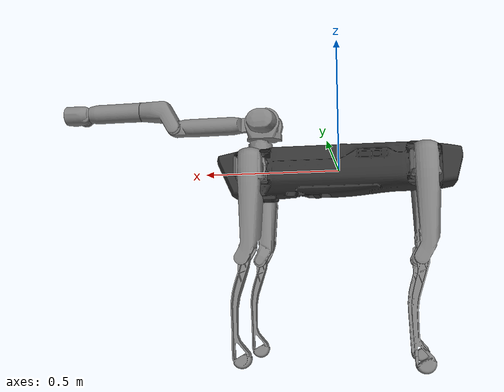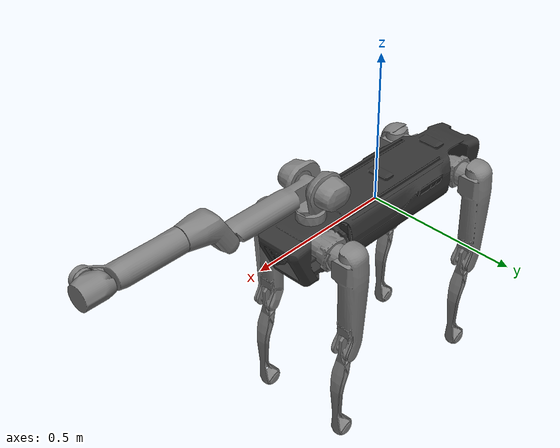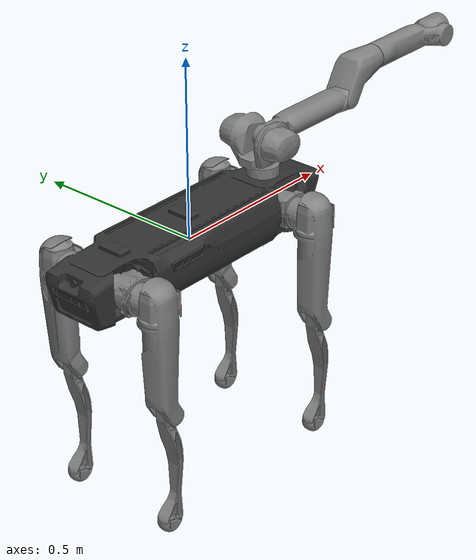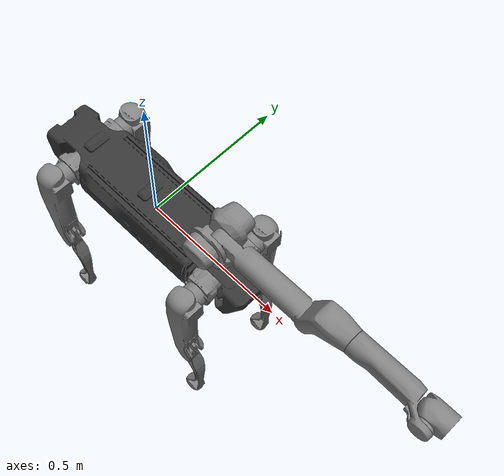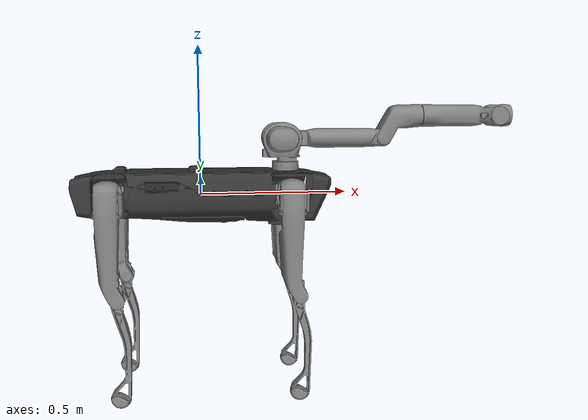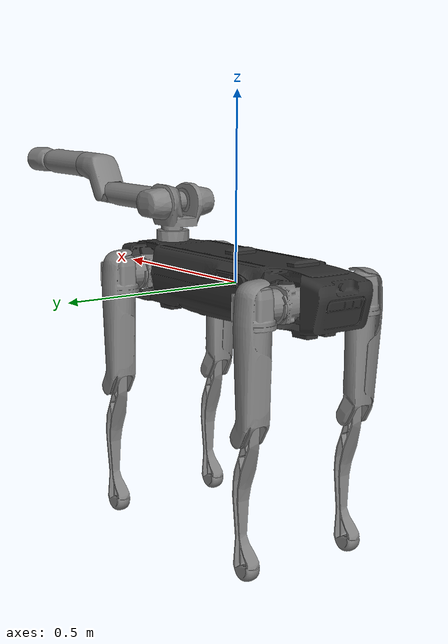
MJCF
<mujoco model="spot">

    <actuator>

        <motor joint="root"         name="torque_body"/>
        <motor joint="root_y"       name="torque_body_y"/>
        <motor joint="root_z"       name="torque_body_z"/>
        <motor joint="root_r"       name="torque_body_r"/>
        <motor joint="root_p"       name="torque_body_p"/>
        <motor joint="root_yw"      name="torque_body_yw"/>

        <motor name="torque_quad_fr_0"  ctrllimited="true" ctrlrange="-500 500"   joint="joint_quad_fr_0" />
        <motor name="torque_quad_fr_1"  ctrllimited="true" ctrlrange="-500 500"   joint="joint_quad_fr_1" />
        <motor name="torque_quad_fr_2"  ctrllimited="true" ctrlrange="-500 500"   joint="joint_quad_fr_2" />

        <motor name="torque_quad_fl_0"  ctrllimited="true" ctrlrange="-500 500"   joint="joint_quad_fl_0" />
        <motor name="torque_quad_fl_1"  ctrllimited="true" ctrlrange="-500 500"   joint="joint_quad_fl_1" />
        <motor name="torque_quad_fl_2"  ctrllimited="true" ctrlrange="-500 500"   joint="joint_quad_fl_2" />

        <motor name="torque_quad_rr_0"  ctrllimited="true" ctrlrange="-500 500"   joint="joint_quad_rr_0" />
        <motor name="torque_quad_rr_1"  ctrllimited="true" ctrlrange="-500 500"   joint="joint_quad_rr_1" />
        <motor name="torque_quad_rr_2"  ctrllimited="true" ctrlrange="-500 500"   joint="joint_quad_rr_2" />

        <motor name="torque_quad_rl_0"  ctrllimited="true" ctrlrange="-500 500"   joint="joint_quad_rl_0" />
        <motor name="torque_quad_rl_1"  ctrllimited="true" ctrlrange="-500 500"   joint="joint_quad_rl_1" />
        <motor name="torque_quad_rl_2"  ctrllimited="true" ctrlrange="-500 500"   joint="joint_quad_rl_2" />

        <motor name="torque_arm_0"      ctrllimited="true" ctrlrange="-250 250"     joint="joint_arm_0"     /> <!--range -150 150-->
        <motor name="torque_arm_1"      ctrllimited="true" ctrlrange="-250 250"     joint="joint_arm_1"     />
        <motor name="torque_arm_2"      ctrllimited="true" ctrlrange="-250 250"     joint="joint_arm_2"     />
        <motor name="torque_arm_3"      ctrllimited="true" ctrlrange="-150 150"     joint="joint_arm_3"     />  <!--range -28 28-->
        <motor name="torque_arm_4"      ctrllimited="true" ctrlrange="-150 150"     joint="joint_arm_4"     />
        <motor name="torque_arm_5"      ctrllimited="true" ctrlrange="-150 150"     joint="joint_arm_5"     />

    </actuator>

    <asset>

        <mesh name="spot_body"      file="meshes/spot_body.stl"      />
        <mesh name="fl_hip"         file="meshes/fl_hip.stl"         />
        <mesh name="fr_hip"         file="meshes/fr_hip.stl"         />
        <mesh name="hl_hip"         file="meshes/hl_hip.stl"         />
        <mesh name="hr_hip"         file="meshes/hr_hip.stl"         />
        <mesh name="fl_uleg"        file="meshes/fl_uleg.stl"        />
        <mesh name="fr_uleg"        file="meshes/fr_uleg.stl"        />
        <mesh name="hl_uleg"        file="meshes/hl_uleg.stl"        />
        <mesh name="hr_uleg"        file="meshes/hr_uleg.stl"        />
        <mesh name="lleg"           file="meshes/lleg.stl"           />
        <mesh name="arm0_link_0"    file="meshes/arm0_link_sh0.stl"  />
        <mesh name="arm0_link_1"    file="meshes/arm0_link_sh1.stl"  />
        <mesh name="arm0_link_2"    file="meshes/arm0_link_hr0.stl"  />
        <mesh name="arm0_link_3"    file="meshes/arm0_link_el0.stl"  />
        <mesh name="arm0_link_4"    file="meshes/arm0_link_el1.stl"  />
        <mesh name="arm0_link_5"    file="meshes/arm0_link_wr0.stl"  />
        <mesh name="arm0_link_6"    file="meshes/arm0_link_wr1.stl"  />
        <mesh name="arm0_link_fngr" file="meshes/arm0_link_fngr.stl" />
    </asset>

    <worldbody>
        <body name="floating_base" pos="0 0 0">

        <body>
            <joint armature="0" damping="0" limited="false" name="root" axis="1 0 0" stiffness="0" type="slide"/>
            <inertial pos="0 0 0" mass="1.0e-6" diaginertia="1.0e-9 1.0e-9 1.0e-9"/>
        <body>
            <joint armature="0" damping="0" limited="false" name="root_y" axis="0 1 0" stiffness="0" type="slide"/>
            <inertial pos="0 0 0" mass="1.0e-6" diaginertia="1.0e-9 1.0e-9 1.0e-9"/>
        <body>
            <joint armature="0" damping="0" limited="false" name="root_z" axis="0 0 1" stiffness="0" type="slide"/>
            <inertial pos="0 0 0" mass="1.0e-6" diaginertia="1.0e-9 1.0e-9 1.0e-9"/>
        <body>
            <joint armature="0" damping="0" limited="false" name="root_r" axis="1 0 0" stiffness="0" type="hinge"/>
            <inertial pos="0 0 0" mass="1.0e-6" diaginertia="1.0e-9 1.0e-9 1.0e-9"/>
        <body>
            <joint armature="0" damping="0" limited="false" name="root_p" axis="0 1 0" stiffness="0" type="hinge"/>
            <inertial pos="0 0 0" mass="1.0e-6" diaginertia="1.0e-9 1.0e-9 1.0e-9"/>
        <body name="base" pos="0 0 0">
            <inertial pos="0 0 -0.00496172" quat="0 0.707107 0 0.707107" mass="16.7077" diaginertia="0.569454 0.549231 0.0815438" />
            <joint armature="0" damping="0" limited="false" name="root_yw" axis="0 0 1" stiffness="0" type="hinge"/>

            <geom type="mesh" mesh="spot_body"
                contype="0" conaffinity="0" group="1"
                rgba="0.2 0.2 0.2 1"
                />

            <body name="link_quad_fl_0" pos="0.29785 0.055 0">

                <inertial pos="-0.0158674 0.00855842 9.03e-06" quat="-0.137996 0.694859 0.131743 0.693377" mass="1.13688" diaginertia="0.00172904 0.00166127 0.00114996" />
                <joint name="joint_quad_fl_0"
                    pos="0 0 0" axis="1 0 0"
                    limited="true" range="-0.785398 0.785398"
                    frictionloss="0" damping="0.0"
                    />
                <geom type="mesh" mesh="fl_hip"
                    contype="0" conaffinity="0" group="1"
                    />
                <geom type="cylinder" size="0.04 0.04"
                    pos="0 0.055 0" quat="1 1 0 0"
                    group="0"
                    />

                <body name="link_quad_fl_1" pos="0 0.110945 0">
                    <inertial pos="0.00214442 -0.0111018 -0.078812" quat="0.998684 0.0454551 -0.0106253 -0.0212473" mass="2.2562" diaginertia="0.0269394 0.0260254 0.00298666" />
                    <joint name="joint_quad_fl_1"
                        pos="0 0 0" axis="0 1 0"
                        limited="true" range="-0.898845 2.29511"
                        frictionloss="0" damping="0.0"
                        />
                    <geom type="mesh" mesh="fl_uleg"
                        contype="0" conaffinity="0" group="1"
                        />
                    <body name="link_quad_fl_2" pos="0.025 0 -0.3205">
                        <inertial pos="0.0059736 0 -0.174664" quat="0.707099 -0.00339701 -0.00339701 0.707099" mass="0.33" diaginertia="0.00709946 0.00701419 0.000144656" />
                        <joint name="joint_quad_fl_2"
                            pos="0 0 0" axis="0 1 0"
                            limited="true" range="-2.7929 -0.2471"
                            frictionloss="0" damping="0.0"
                            />
                        <geom type="mesh" mesh="lleg"
                            contype="0" conaffinity="0" group="1"
                            />
                        <body name="frame_fl_foot" pos="0 0 -0.33">
                            <inertial pos="0 0 0" mass="0.1" diaginertia="0.0001 0.0001 0.0001" />
                            <geom type="sphere" size="0.05"
                                rgba="0 0 0 0"
                                group="0" contype="1" conaffinity="1"
                                />
                        </body>
                    </body>
                </body>
            </body>
            <body name="link_quad_fr_0" pos="0.29785 -0.055 0">
                <inertial pos="-0.0158674 -0.00855842 9.03e-06" quat="0.137996 0.694859 -0.131743 0.693377" mass="1.13688" diaginertia="0.00172904 0.00166127 0.00114996" />
                <joint name="joint_quad_fr_0"
                    pos="0 0 0" axis="1 0 0"
                    limited="true" range="-0.785398 0.785398"
                    frictionloss="0" damping="0.0"
                    />
                <geom type="mesh" mesh="fr_hip"
                    contype="0" conaffinity="0" group="1"
                    />
                <geom type="cylinder" size="0.04 0.04"
                    pos="0 -0.055 0" quat="1 1 0 0"
                    group="0"
                    />
                <body name="link_quad_fr_1" pos="0 -0.110945 0">
                    <inertial pos="0.00214442 0.0111018 -0.078812" quat="0.998684 -0.0454551 -0.0106253 0.0212473" mass="2.2562" diaginertia="0.0269394 0.0260254 0.00298666" />
                    <joint name="joint_quad_fr_1"
                        pos="0 0 0" axis="0 1 0"
                        limited="true" range="-0.898845 2.29511"
                        frictionloss="0" damping="0.0"
                        />
                    <geom type="mesh" mesh="fr_uleg"
                        contype="0" conaffinity="1" group="1"
                        />
                    <body name="link_quad_fr_2" pos="0.025 0 -0.3205">
                        <inertial pos="0.0059736 0 -0.174664" quat="0.707099 -0.00339701 -0.00339701 0.707099" mass="0.33" diaginertia="0.00709946 0.00701419 0.000144656" />
                        <joint name="joint_quad_fr_2"
                            pos="0 0 0" axis="0 1 0"
                            limited="true" range="-2.7929 -0.2471"
                            frictionloss="0" damping="0.0"
                            />
                        <geom type="mesh" mesh="lleg"
                            contype="0" conaffinity="0" group="1"
                            />
                        <body name="frame_fr_foot" pos="0 0 -0.33">
                            <inertial pos="0 0 0" mass="0.1" diaginertia="0.0001 0.0001 0.0001" />
                            <geom type="sphere" size="0.05"
                                rgba="0 0 0 0"
                                group="0" contype="1" conaffinity="1"
                                />
                        </body>
                    </body>
                </body>
            </body>
            <body name="link_quad_rl_0" pos="-0.29785 0.055 0">
                <inertial pos="0.0158674 0.00855842 9.03e-06" quat="0.131743 0.693377 -0.137996 0.694859" mass="1.13688" diaginertia="0.00172904 0.00166127 0.00114996" />
                <joint name="joint_quad_rl_0"
                    pos="0 0 0" axis="1 0 0"
                    limited="true" range="-0.785398 0.785398"
                    frictionloss="0" damping="0.0"
                    />
                <geom type="mesh" mesh="hl_hip"
                    contype="0" conaffinity="0" group="1"
                    />
                <geom type="cylinder" size="0.04 0.04"
                    pos="0 0.055 0" quat="1 1 0 0"
                    group="0"
                    />
                <body name="link_quad_rl_1" pos="0 0.110945 0">
                    <inertial pos="0.00214442 -0.0111018 -0.078812" quat="0.998684 0.0454551 -0.0106253 -0.0212473" mass="2.2562" diaginertia="0.0269394 0.0260254 0.00298666" />
                    <joint name="joint_quad_rl_1"
                        pos="0 0 0" axis="0 1 0"
                        limited="true" range="-0.898845 2.29511"
                        frictionloss="0" damping="0.0"
                        />
                    <geom type="mesh" mesh="hl_uleg"
                        contype="0" conaffinity="1" group="1"
                        />
                    <body name="link_quad_rl_2" pos="0.025 0 -0.3205">
                        <inertial pos="0.0059736 0 -0.174664" quat="0.707099 -0.00339701 -0.00339701 0.707099" mass="0.33" diaginertia="0.00709946 0.00701419 0.000144656" />
                        <joint name="joint_quad_rl_2"
                            pos="0 0 0" axis="0 1 0"
                            limited="true" range="-2.7929 -0.2471"
                            frictionloss="0" damping="0.0"
                            />
                        <geom type="mesh" mesh="lleg"
                            contype="0" conaffinity="0" group="1"
                            />
                        <body name="frame_rl_foot" pos="0 0 -0.33">
                            <inertial pos="0 0 0" mass="0.1" diaginertia="0.0001 0.0001 0.0001" />
                            <geom type="sphere" size="0.05"
                                rgba="0 0 0 0"
                                group="0" contype="1" conaffinity="1"
                                />
                        </body>
                    </body>
                </body>
            </body>
            <body name="link_quad_rr_0" pos="-0.29785 -0.055 0">
                <inertial pos="0.0158674 -0.00855842 9.03e-06" quat="-0.131743 0.693377 0.137996 0.694859" mass="1.13688" diaginertia="0.00172904 0.00166127 0.00114996" />
                <joint name="joint_quad_rr_0"
                    pos="0 0 0" axis="1 0 0"
                    limited="true" range="-0.785398 0.785398"
                    frictionloss="0" damping="0.0"
                    />
                <geom type="mesh" mesh="hr_hip"
                    contype="0" conaffinity="0" group="1"
                    />
                <geom type="cylinder" size="0.04 0.04"
                    pos="0 -0.055 0" quat="1 1 0 0"
                    group="0"
                    />
                <body name="link_quad_rr_1" pos="0 -0.110945 0">
                    <inertial pos="0.00214442 0.0111018 -0.078812" quat="0.998684 -0.0454551 -0.0106253 0.0212473" mass="2.2562" diaginertia="0.0269394 0.0260254 0.00298666" />
                    <joint name="joint_quad_rr_1"
                        pos="0 0 0" axis="0 1 0"
                        limited="true" range="-0.898845 2.29511"
                        frictionloss="0" damping="0.0"
                        />
                    <geom type="mesh" mesh="hr_uleg"
                        contype="0" conaffinity="1" group="1"
                        />
                    <body name="link_quad_rr_2" pos="0.025 0 -0.3205">
                        <inertial pos="0.0059736 0 -0.174664" quat="0.707099 -0.00339701 -0.00339701 0.707099" mass="0.33" diaginertia="0.00709946 0.00701419 0.000144656" />
                        <joint name="joint_quad_rr_2"
                            pos="0 0 0" axis="0 1 0"
                            limited="true" range="-2.7929 -0.2471"
                            frictionloss="0" damping="0.0"
                            />
                        <geom type="mesh" mesh="lleg"
                            contype="0" conaffinity="0" group="1"
                            />
                        <body name="frame_rr_foot" pos="0 0 -0.33">
                            <inertial pos="0 0 0" mass="0.1" diaginertia="0.0001 0.0001 0.0001" />
                            <geom type="sphere" size="0.05"
                                rgba="0 0 0 0"
                                group="0" contype="1" conaffinity="1"
                                />
                        </body>
                    </body>
                </body>
            </body>

            <body name="link_arm_0" pos="0.292 0 0.188">
                <inertial pos="-0.008399 0.000272 -0.024603" quat="0.710827 0.700855 0.0423863 -0.0416066" mass="1.9047" diaginertia="0.00891905 0.00728042 0.00492153" />
                <joint name="joint_arm_0"
                    pos="0 0 0" axis="0 0 1"
                    type="hinge" limited="true" range="-2.61799 3.14159"
                    frictionloss="0" damping="0.0"
                    />
                <geom type="mesh" contype="0" conaffinity="0" group="1" mesh="arm0_link_0" />

                <body name="link_arm_1" pos="0 0 0">
                    <inertial pos="0.0808491 -0.00167243 0.00045644" quat="-0.00467017 0.708456 0.00702831 0.705705" mass="1.85702" diaginertia="0.0281997 0.0270454 0.00260818" />
                    <joint name="joint_arm_1"
                        pos="0 0 0" axis="0 1 0"
                        type="hinge" limited="true" range="-3.14159 0.523599"
                        frictionloss="0" damping="0.0"
                        />
                    <geom type="mesh" contype="0" conaffinity="0" group="1" mesh="arm0_link_1" />
                    <geom type="mesh" contype="0" conaffinity="0" group="1" mesh="arm0_link_2" />

                    <body name="link_arm_2" pos="0.3385 0 0">
                        <inertial pos="0.0447662 -0.0027113 0.0499136" quat="0.0923782 0.888458 0.19384 0.40563" mass="0.94832" diaginertia="0.00286401 0.00265579 0.000960161" />
                        <joint name="joint_arm_2"
                            pos="0 0 0" axis="0 1 0"
                            type="hinge" limited="true" range="0 3.14159"
                            frictionloss="0" damping="0.0"
                            />
                        <geom type="mesh" contype="0" conaffinity="0" group="1" mesh="arm0_link_3" />

                        <body name="link_arm_3" pos="0.4033 0 0.075">
                            <inertial pos="-0.168671 -0.0161612 1.149e-05" quat="0.488034 0.425158 0.565043 0.511654" mass="1.01755" diaginertia="0.0169253 0.0168986 0.000746021" />
                            <joint name="joint_arm_3"
                                pos="0 0 0" axis="1 0 0"
                                type="hinge" limited="true" range="-2.79253 2.79253"
                                frictionloss="0" damping="0.0"
                                />
                            <geom type="mesh" contype="0" conaffinity="0" group="1" mesh="arm0_link_4" />

                            <body name="link_arm_4" pos="0 0 0">
                                <inertial pos="0.00952465 -0.0114441 1.86e-06" quat="0.308237 0.652328 -0.273781 0.636005" mass="0.582637" diaginertia="0.000536182 0.000528639 0.000388399" />
                                <joint name="joint_arm_4"
                                    pos="0 0 0" axis="0 1 0"
                                    type="hinge" limited="true" range="-1.8326 1.8326"
                                    frictionloss="0" damping="0.0"
                                    />
                                <geom type="mesh" contype="0" conaffinity="0" group="1" mesh="arm0_link_5" />

                                <body name="link_arm_5" pos="0 0 0">
                                    <inertial pos="0.0975128 9.265e-05 -0.0112052" quat="0.592778 0.385047 0.386229 0.592605" mass="0.933353" diaginertia="0.00197018 0.00182151 0.00082476" />
                                    <joint name="joint_arm_5"
                                        pos="0 0 0" axis="1 0 0"
                                        type="hinge" limited="true" range="-2.87989 2.87979"
                                        frictionloss="0" damping="0.0"
                                        />
                                    <body name="eef_point" pos="0.06 0.0 0.0">
                                    <body name="gripper_mount" pos="0.0 0.0 0.0" quat="0.5 0.5 0.5 0.5">
                                        <camera mode="fixed" name="stereo_l_right_hand" pos="0.05 0.1 0.0" quat="0 1 0 0" fovy="120"/>
                                        <camera mode="fixed" name="stereo_r_right_hand" pos="-0.05 0.1 0.0" quat="0 1 0 0" fovy="120"/>
                                    </body>
                                    </body>
                                </body>
                            </body>
                        </body>
                    </body>
                </body>
            </body>
        </body>
    </body>
    </body>
    </body>
    </body>
    </body>
    </body>
    </worldbody>

    <equality>
    </equality>

</mujoco>
